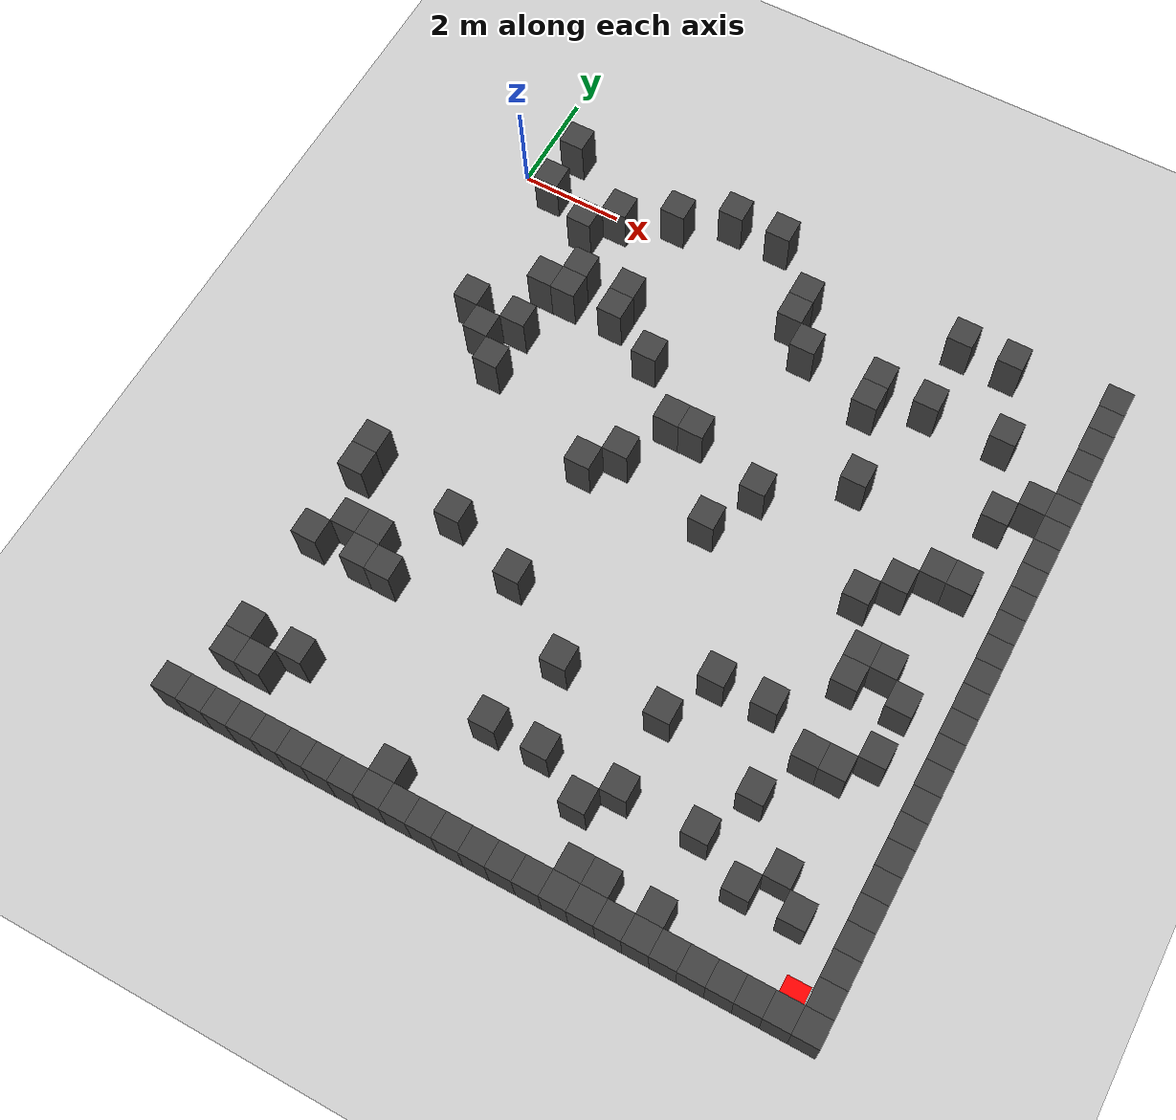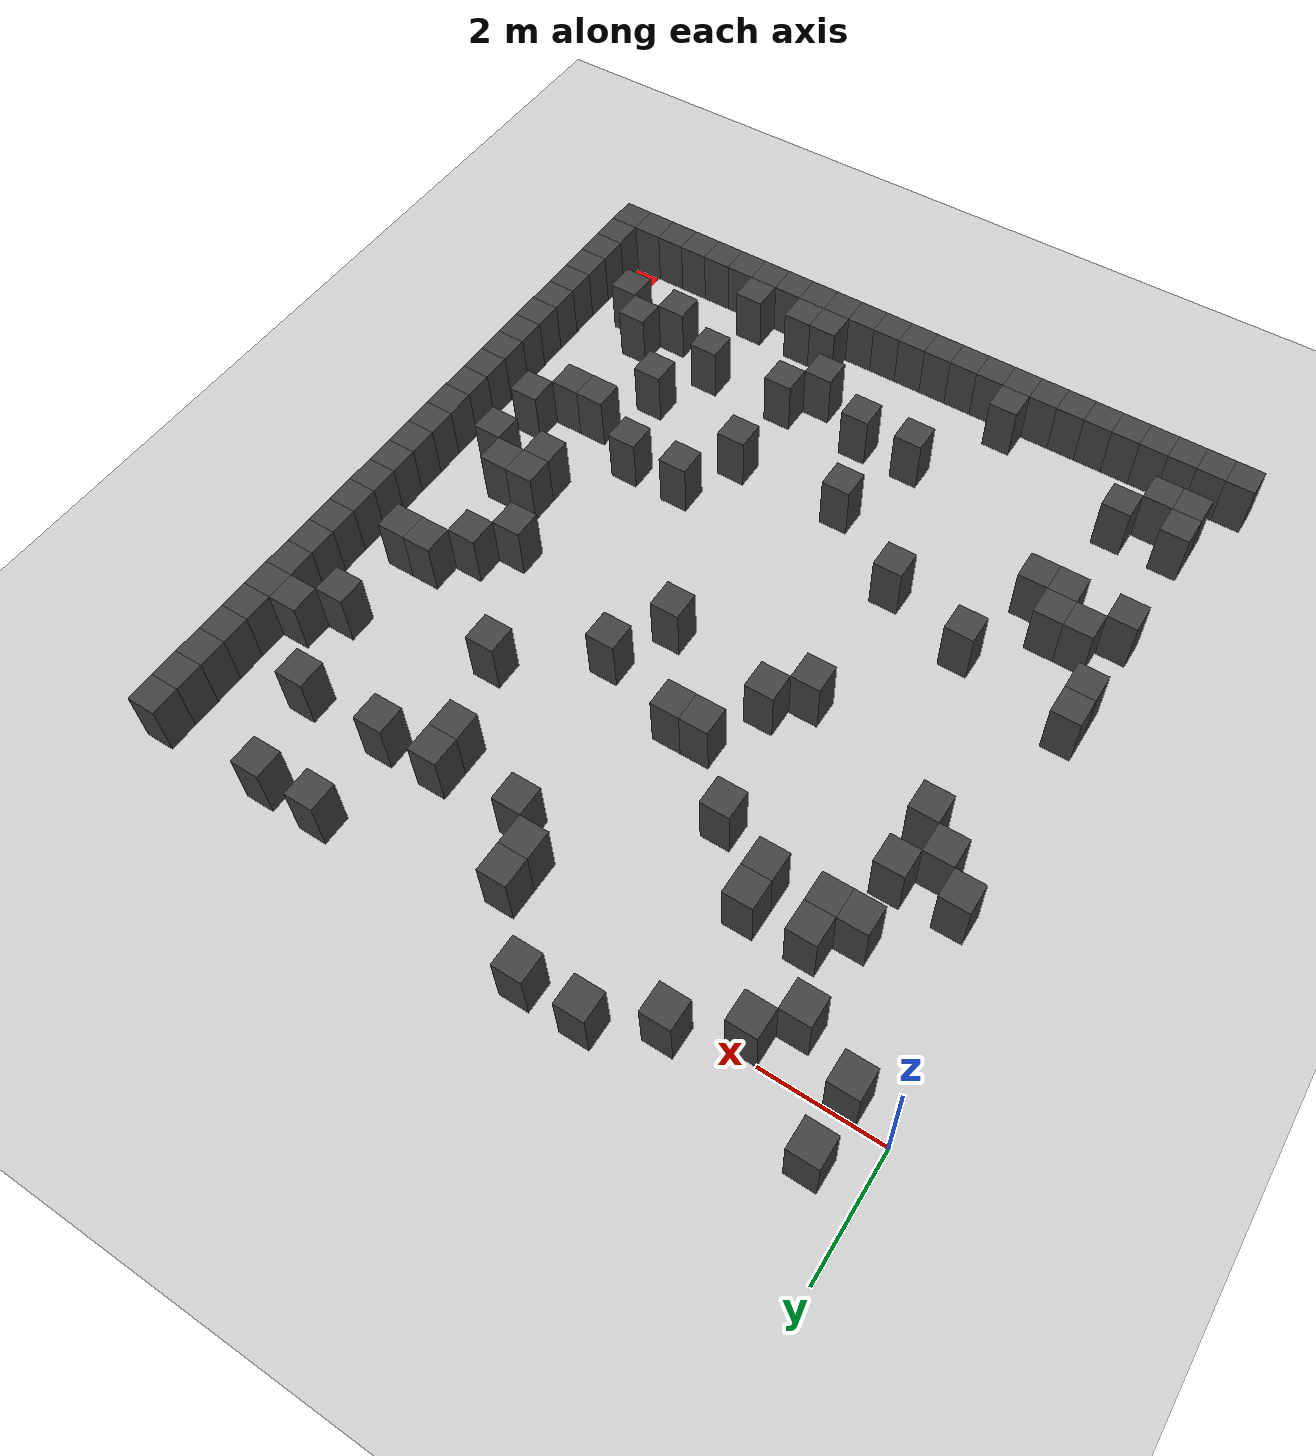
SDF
<sdf version="1.7">
 <world name="map_2627">
  <model name="ground_plane">
   <static>true</static>
   <link name="link">
    <collision name="collision">
     <geometry><plane><normal>0 0 1</normal><size>200 200</size></plane></geometry>
    </collision>
    <visual name="visual">
     <geometry><plane><normal>0 0 1</normal><size>200 200</size></plane></geometry>
     <material><ambient>0.8 0.8 0.8 1</ambient><diffuse>0.8 0.8 0.8 1</diffuse></material>
    </visual>
   </link>
  </model>
  <model name="maze_environment">
   <static>true</static>
   <link name="wall_251">
    <pose>0.750 0.750 0.500 0 0 0</pose>
    <collision name="col"><geometry><box><size>0.5 0.5 1.0</size></box></geometry></collision>
    <visual name="vis">
     <geometry><box><size>0.5 0.5 1.0</size></box></geometry>
     <material><ambient>0.15 0.15 0.15 1</ambient><diffuse>0.25 0.25 0.25 1</diffuse></material>
    </visual>
   </link>
   <link name="wall_252">
    <pose>4.250 0.750 0.500 0 0 0</pose>
    <collision name="col"><geometry><box><size>0.5 0.5 1.0</size></box></geometry></collision>
    <visual name="vis">
     <geometry><box><size>0.5 0.5 1.0</size></box></geometry>
     <material><ambient>0.15 0.15 0.15 1</ambient><diffuse>0.25 0.25 0.25 1</diffuse></material>
    </visual>
   </link>
   <link name="wall_253">
    <pose>5.250 0.750 0.500 0 0 0</pose>
    <collision name="col"><geometry><box><size>0.5 0.5 1.0</size></box></geometry></collision>
    <visual name="vis">
     <geometry><box><size>0.5 0.5 1.0</size></box></geometry>
     <material><ambient>0.15 0.15 0.15 1</ambient><diffuse>0.25 0.25 0.25 1</diffuse></material>
    </visual>
   </link>
   <link name="wall_262">
    <pose>3.250 0.250 0.500 0 0 0</pose>
    <collision name="col"><geometry><box><size>0.5 0.5 1.0</size></box></geometry></collision>
    <visual name="vis">
     <geometry><box><size>0.5 0.5 1.0</size></box></geometry>
     <material><ambient>0.15 0.15 0.15 1</ambient><diffuse>0.25 0.25 0.25 1</diffuse></material>
    </visual>
   </link>
   <link name="wall_263">
    <pose>9.250 0.250 0.500 0 0 0</pose>
    <collision name="col"><geometry><box><size>0.5 0.5 1.0</size></box></geometry></collision>
    <visual name="vis">
     <geometry><box><size>0.5 0.5 1.0</size></box></geometry>
     <material><ambient>0.15 0.15 0.15 1</ambient><diffuse>0.25 0.25 0.25 1</diffuse></material>
    </visual>
   </link>
   <link name="wall_264">
    <pose>10.250 0.250 0.500 0 0 0</pose>
    <collision name="col"><geometry><box><size>0.5 0.5 1.0</size></box></geometry></collision>
    <visual name="vis">
     <geometry><box><size>0.5 0.5 1.0</size></box></geometry>
     <material><ambient>0.15 0.15 0.15 1</ambient><diffuse>0.25 0.25 0.25 1</diffuse></material>
    </visual>
   </link>
   <link name="wall_265">
    <pose>12.250 0.250 0.500 0 0 0</pose>
    <collision name="col"><geometry><box><size>0.5 0.5 1.0</size></box></geometry></collision>
    <visual name="vis">
     <geometry><box><size>0.5 0.5 1.0</size></box></geometry>
     <material><ambient>0.15 0.15 0.15 1</ambient><diffuse>0.25 0.25 0.25 1</diffuse></material>
    </visual>
   </link>
   <link name="wall_270">
    <pose>0.750 -0.250 0.500 0 0 0</pose>
    <collision name="col"><geometry><box><size>0.5 0.5 1.0</size></box></geometry></collision>
    <visual name="vis">
     <geometry><box><size>0.5 0.5 1.0</size></box></geometry>
     <material><ambient>0.15 0.15 0.15 1</ambient><diffuse>0.25 0.25 0.25 1</diffuse></material>
    </visual>
   </link>
   <link name="wall_271">
    <pose>2.250 -0.250 0.500 0 0 0</pose>
    <collision name="col"><geometry><box><size>0.5 0.5 1.0</size></box></geometry></collision>
    <visual name="vis">
     <geometry><box><size>0.5 0.5 1.0</size></box></geometry>
     <material><ambient>0.15 0.15 0.15 1</ambient><diffuse>0.25 0.25 0.25 1</diffuse></material>
    </visual>
   </link>
   <link name="wall_272">
    <pose>6.250 -0.250 0.500 0 0 0</pose>
    <collision name="col"><geometry><box><size>0.5 0.5 1.0</size></box></geometry></collision>
    <visual name="vis">
     <geometry><box><size>0.5 0.5 1.0</size></box></geometry>
     <material><ambient>0.15 0.15 0.15 1</ambient><diffuse>0.25 0.25 0.25 1</diffuse></material>
    </visual>
   </link>
   <link name="wall_273">
    <pose>12.250 -0.250 0.500 0 0 0</pose>
    <collision name="col"><geometry><box><size>0.5 0.5 1.0</size></box></geometry></collision>
    <visual name="vis">
     <geometry><box><size>0.5 0.5 1.0</size></box></geometry>
     <material><ambient>0.15 0.15 0.15 1</ambient><diffuse>0.25 0.25 0.25 1</diffuse></material>
    </visual>
   </link>
   <link name="wall_276">
    <pose>1.750 -0.750 0.500 0 0 0</pose>
    <collision name="col"><geometry><box><size>0.5 0.5 1.0</size></box></geometry></collision>
    <visual name="vis">
     <geometry><box><size>0.5 0.5 1.0</size></box></geometry>
     <material><ambient>0.15 0.15 0.15 1</ambient><diffuse>0.25 0.25 0.25 1</diffuse></material>
    </visual>
   </link>
   <link name="wall_277">
    <pose>6.250 -0.750 0.500 0 0 0</pose>
    <collision name="col"><geometry><box><size>0.5 0.5 1.0</size></box></geometry></collision>
    <visual name="vis">
     <geometry><box><size>0.5 0.5 1.0</size></box></geometry>
     <material><ambient>0.15 0.15 0.15 1</ambient><diffuse>0.25 0.25 0.25 1</diffuse></material>
    </visual>
   </link>
   <link name="wall_278">
    <pose>12.250 -0.750 0.500 0 0 0</pose>
    <collision name="col"><geometry><box><size>0.5 0.5 1.0</size></box></geometry></collision>
    <visual name="vis">
     <geometry><box><size>0.5 0.5 1.0</size></box></geometry>
     <material><ambient>0.15 0.15 0.15 1</ambient><diffuse>0.25 0.25 0.25 1</diffuse></material>
    </visual>
   </link>
   <link name="wall_282">
    <pose>6.750 -1.250 0.500 0 0 0</pose>
    <collision name="col"><geometry><box><size>0.5 0.5 1.0</size></box></geometry></collision>
    <visual name="vis">
     <geometry><box><size>0.5 0.5 1.0</size></box></geometry>
     <material><ambient>0.15 0.15 0.15 1</ambient><diffuse>0.25 0.25 0.25 1</diffuse></material>
    </visual>
   </link>
   <link name="wall_283">
    <pose>8.250 -1.250 0.500 0 0 0</pose>
    <collision name="col"><geometry><box><size>0.5 0.5 1.0</size></box></geometry></collision>
    <visual name="vis">
     <geometry><box><size>0.5 0.5 1.0</size></box></geometry>
     <material><ambient>0.15 0.15 0.15 1</ambient><diffuse>0.25 0.25 0.25 1</diffuse></material>
    </visual>
   </link>
   <link name="wall_284">
    <pose>9.250 -1.250 0.500 0 0 0</pose>
    <collision name="col"><geometry><box><size>0.5 0.5 1.0</size></box></geometry></collision>
    <visual name="vis">
     <geometry><box><size>0.5 0.5 1.0</size></box></geometry>
     <material><ambient>0.15 0.15 0.15 1</ambient><diffuse>0.25 0.25 0.25 1</diffuse></material>
    </visual>
   </link>
   <link name="wall_285">
    <pose>10.750 -1.250 0.500 0 0 0</pose>
    <collision name="col"><geometry><box><size>0.5 0.5 1.0</size></box></geometry></collision>
    <visual name="vis">
     <geometry><box><size>0.5 0.5 1.0</size></box></geometry>
     <material><ambient>0.15 0.15 0.15 1</ambient><diffuse>0.25 0.25 0.25 1</diffuse></material>
    </visual>
   </link>
   <link name="wall_286">
    <pose>12.250 -1.250 0.500 0 0 0</pose>
    <collision name="col"><geometry><box><size>0.5 0.5 1.0</size></box></geometry></collision>
    <visual name="vis">
     <geometry><box><size>0.5 0.5 1.0</size></box></geometry>
     <material><ambient>0.15 0.15 0.15 1</ambient><diffuse>0.25 0.25 0.25 1</diffuse></material>
    </visual>
   </link>
   <link name="wall_290">
    <pose>2.250 -1.750 0.500 0 0 0</pose>
    <collision name="col"><geometry><box><size>0.5 0.5 1.0</size></box></geometry></collision>
    <visual name="vis">
     <geometry><box><size>0.5 0.5 1.0</size></box></geometry>
     <material><ambient>0.15 0.15 0.15 1</ambient><diffuse>0.25 0.25 0.25 1</diffuse></material>
    </visual>
   </link>
   <link name="wall_291">
    <pose>3.250 -1.750 0.500 0 0 0</pose>
    <collision name="col"><geometry><box><size>0.5 0.5 1.0</size></box></geometry></collision>
    <visual name="vis">
     <geometry><box><size>0.5 0.5 1.0</size></box></geometry>
     <material><ambient>0.15 0.15 0.15 1</ambient><diffuse>0.25 0.25 0.25 1</diffuse></material>
    </visual>
   </link>
   <link name="wall_292">
    <pose>8.250 -1.750 0.500 0 0 0</pose>
    <collision name="col"><geometry><box><size>0.5 0.5 1.0</size></box></geometry></collision>
    <visual name="vis">
     <geometry><box><size>0.5 0.5 1.0</size></box></geometry>
     <material><ambient>0.15 0.15 0.15 1</ambient><diffuse>0.25 0.25 0.25 1</diffuse></material>
    </visual>
   </link>
   <link name="wall_293">
    <pose>12.250 -1.750 0.500 0 0 0</pose>
    <collision name="col"><geometry><box><size>0.5 0.5 1.0</size></box></geometry></collision>
    <visual name="vis">
     <geometry><box><size>0.5 0.5 1.0</size></box></geometry>
     <material><ambient>0.15 0.15 0.15 1</ambient><diffuse>0.25 0.25 0.25 1</diffuse></material>
    </visual>
   </link>
   <link name="wall_296">
    <pose>1.750 -2.250 0.500 0 0 0</pose>
    <collision name="col"><geometry><box><size>0.5 0.5 1.0</size></box></geometry></collision>
    <visual name="vis">
     <geometry><box><size>0.5 0.5 1.0</size></box></geometry>
     <material><ambient>0.15 0.15 0.15 1</ambient><diffuse>0.25 0.25 0.25 1</diffuse></material>
    </visual>
   </link>
   <link name="wall_297">
    <pose>2.250 -2.250 0.500 0 0 0</pose>
    <collision name="col"><geometry><box><size>0.5 0.5 1.0</size></box></geometry></collision>
    <visual name="vis">
     <geometry><box><size>0.5 0.5 1.0</size></box></geometry>
     <material><ambient>0.15 0.15 0.15 1</ambient><diffuse>0.25 0.25 0.25 1</diffuse></material>
    </visual>
   </link>
   <link name="wall_298">
    <pose>3.250 -2.250 0.500 0 0 0</pose>
    <collision name="col"><geometry><box><size>0.5 0.5 1.0</size></box></geometry></collision>
    <visual name="vis">
     <geometry><box><size>0.5 0.5 1.0</size></box></geometry>
     <material><ambient>0.15 0.15 0.15 1</ambient><diffuse>0.25 0.25 0.25 1</diffuse></material>
    </visual>
   </link>
   <link name="wall_299">
    <pose>11.750 -2.250 0.500 0 0 0</pose>
    <collision name="col"><geometry><box><size>0.5 0.5 1.0</size></box></geometry></collision>
    <visual name="vis">
     <geometry><box><size>0.5 0.5 1.0</size></box></geometry>
     <material><ambient>0.15 0.15 0.15 1</ambient><diffuse>0.25 0.25 0.25 1</diffuse></material>
    </visual>
   </link>
   <link name="wall_300">
    <pose>12.250 -2.250 0.500 0 0 0</pose>
    <collision name="col"><geometry><box><size>0.5 0.5 1.0</size></box></geometry></collision>
    <visual name="vis">
     <geometry><box><size>0.5 0.5 1.0</size></box></geometry>
     <material><ambient>0.15 0.15 0.15 1</ambient><diffuse>0.25 0.25 0.25 1</diffuse></material>
    </visual>
   </link>
   <link name="wall_304">
    <pose>4.250 -2.750 0.500 0 0 0</pose>
    <collision name="col"><geometry><box><size>0.5 0.5 1.0</size></box></geometry></collision>
    <visual name="vis">
     <geometry><box><size>0.5 0.5 1.0</size></box></geometry>
     <material><ambient>0.15 0.15 0.15 1</ambient><diffuse>0.25 0.25 0.25 1</diffuse></material>
    </visual>
   </link>
   <link name="wall_305">
    <pose>11.250 -2.750 0.500 0 0 0</pose>
    <collision name="col"><geometry><box><size>0.5 0.5 1.0</size></box></geometry></collision>
    <visual name="vis">
     <geometry><box><size>0.5 0.5 1.0</size></box></geometry>
     <material><ambient>0.15 0.15 0.15 1</ambient><diffuse>0.25 0.25 0.25 1</diffuse></material>
    </visual>
   </link>
   <link name="wall_306">
    <pose>12.250 -2.750 0.500 0 0 0</pose>
    <collision name="col"><geometry><box><size>0.5 0.5 1.0</size></box></geometry></collision>
    <visual name="vis">
     <geometry><box><size>0.5 0.5 1.0</size></box></geometry>
     <material><ambient>0.15 0.15 0.15 1</ambient><diffuse>0.25 0.25 0.25 1</diffuse></material>
    </visual>
   </link>
   <link name="wall_310">
    <pose>0.750 -3.250 0.500 0 0 0</pose>
    <collision name="col"><geometry><box><size>0.5 0.5 1.0</size></box></geometry></collision>
    <visual name="vis">
     <geometry><box><size>0.5 0.5 1.0</size></box></geometry>
     <material><ambient>0.15 0.15 0.15 1</ambient><diffuse>0.25 0.25 0.25 1</diffuse></material>
    </visual>
   </link>
   <link name="wall_311">
    <pose>1.750 -3.250 0.500 0 0 0</pose>
    <collision name="col"><geometry><box><size>0.5 0.5 1.0</size></box></geometry></collision>
    <visual name="vis">
     <geometry><box><size>0.5 0.5 1.0</size></box></geometry>
     <material><ambient>0.15 0.15 0.15 1</ambient><diffuse>0.25 0.25 0.25 1</diffuse></material>
    </visual>
   </link>
   <link name="wall_312">
    <pose>8.750 -3.250 0.500 0 0 0</pose>
    <collision name="col"><geometry><box><size>0.5 0.5 1.0</size></box></geometry></collision>
    <visual name="vis">
     <geometry><box><size>0.5 0.5 1.0</size></box></geometry>
     <material><ambient>0.15 0.15 0.15 1</ambient><diffuse>0.25 0.25 0.25 1</diffuse></material>
    </visual>
   </link>
   <link name="wall_313">
    <pose>12.250 -3.250 0.500 0 0 0</pose>
    <collision name="col"><geometry><box><size>0.5 0.5 1.0</size></box></geometry></collision>
    <visual name="vis">
     <geometry><box><size>0.5 0.5 1.0</size></box></geometry>
     <material><ambient>0.15 0.15 0.15 1</ambient><diffuse>0.25 0.25 0.25 1</diffuse></material>
    </visual>
   </link>
   <link name="wall_316">
    <pose>1.250 -3.750 0.500 0 0 0</pose>
    <collision name="col"><geometry><box><size>0.5 0.5 1.0</size></box></geometry></collision>
    <visual name="vis">
     <geometry><box><size>0.5 0.5 1.0</size></box></geometry>
     <material><ambient>0.15 0.15 0.15 1</ambient><diffuse>0.25 0.25 0.25 1</diffuse></material>
    </visual>
   </link>
   <link name="wall_317">
    <pose>5.250 -3.750 0.500 0 0 0</pose>
    <collision name="col"><geometry><box><size>0.5 0.5 1.0</size></box></geometry></collision>
    <visual name="vis">
     <geometry><box><size>0.5 0.5 1.0</size></box></geometry>
     <material><ambient>0.15 0.15 0.15 1</ambient><diffuse>0.25 0.25 0.25 1</diffuse></material>
    </visual>
   </link>
   <link name="wall_318">
    <pose>5.750 -3.750 0.500 0 0 0</pose>
    <collision name="col"><geometry><box><size>0.5 0.5 1.0</size></box></geometry></collision>
    <visual name="vis">
     <geometry><box><size>0.5 0.5 1.0</size></box></geometry>
     <material><ambient>0.15 0.15 0.15 1</ambient><diffuse>0.25 0.25 0.25 1</diffuse></material>
    </visual>
   </link>
   <link name="wall_319">
    <pose>12.250 -3.750 0.500 0 0 0</pose>
    <collision name="col"><geometry><box><size>0.5 0.5 1.0</size></box></geometry></collision>
    <visual name="vis">
     <geometry><box><size>0.5 0.5 1.0</size></box></geometry>
     <material><ambient>0.15 0.15 0.15 1</ambient><diffuse>0.25 0.25 0.25 1</diffuse></material>
    </visual>
   </link>
   <link name="wall_325">
    <pose>1.750 -4.250 0.500 0 0 0</pose>
    <collision name="col"><geometry><box><size>0.5 0.5 1.0</size></box></geometry></collision>
    <visual name="vis">
     <geometry><box><size>0.5 0.5 1.0</size></box></geometry>
     <material><ambient>0.15 0.15 0.15 1</ambient><diffuse>0.25 0.25 0.25 1</diffuse></material>
    </visual>
   </link>
   <link name="wall_326">
    <pose>7.250 -4.250 0.500 0 0 0</pose>
    <collision name="col"><geometry><box><size>0.5 0.5 1.0</size></box></geometry></collision>
    <visual name="vis">
     <geometry><box><size>0.5 0.5 1.0</size></box></geometry>
     <material><ambient>0.15 0.15 0.15 1</ambient><diffuse>0.25 0.25 0.25 1</diffuse></material>
    </visual>
   </link>
   <link name="wall_327">
    <pose>10.750 -4.250 0.500 0 0 0</pose>
    <collision name="col"><geometry><box><size>0.5 0.5 1.0</size></box></geometry></collision>
    <visual name="vis">
     <geometry><box><size>0.5 0.5 1.0</size></box></geometry>
     <material><ambient>0.15 0.15 0.15 1</ambient><diffuse>0.25 0.25 0.25 1</diffuse></material>
    </visual>
   </link>
   <link name="wall_328">
    <pose>11.250 -4.250 0.500 0 0 0</pose>
    <collision name="col"><geometry><box><size>0.5 0.5 1.0</size></box></geometry></collision>
    <visual name="vis">
     <geometry><box><size>0.5 0.5 1.0</size></box></geometry>
     <material><ambient>0.15 0.15 0.15 1</ambient><diffuse>0.25 0.25 0.25 1</diffuse></material>
    </visual>
   </link>
   <link name="wall_329">
    <pose>12.250 -4.250 0.500 0 0 0</pose>
    <collision name="col"><geometry><box><size>0.5 0.5 1.0</size></box></geometry></collision>
    <visual name="vis">
     <geometry><box><size>0.5 0.5 1.0</size></box></geometry>
     <material><ambient>0.15 0.15 0.15 1</ambient><diffuse>0.25 0.25 0.25 1</diffuse></material>
    </visual>
   </link>
   <link name="wall_336">
    <pose>4.750 -4.750 0.500 0 0 0</pose>
    <collision name="col"><geometry><box><size>0.5 0.5 1.0</size></box></geometry></collision>
    <visual name="vis">
     <geometry><box><size>0.5 0.5 1.0</size></box></geometry>
     <material><ambient>0.15 0.15 0.15 1</ambient><diffuse>0.25 0.25 0.25 1</diffuse></material>
    </visual>
   </link>
   <link name="wall_337">
    <pose>10.250 -4.750 0.500 0 0 0</pose>
    <collision name="col"><geometry><box><size>0.5 0.5 1.0</size></box></geometry></collision>
    <visual name="vis">
     <geometry><box><size>0.5 0.5 1.0</size></box></geometry>
     <material><ambient>0.15 0.15 0.15 1</ambient><diffuse>0.25 0.25 0.25 1</diffuse></material>
    </visual>
   </link>
   <link name="wall_338">
    <pose>12.250 -4.750 0.500 0 0 0</pose>
    <collision name="col"><geometry><box><size>0.5 0.5 1.0</size></box></geometry></collision>
    <visual name="vis">
     <geometry><box><size>0.5 0.5 1.0</size></box></geometry>
     <material><ambient>0.15 0.15 0.15 1</ambient><diffuse>0.25 0.25 0.25 1</diffuse></material>
    </visual>
   </link>
   <link name="wall_344">
    <pose>4.250 -5.250 0.500 0 0 0</pose>
    <collision name="col"><geometry><box><size>0.5 0.5 1.0</size></box></geometry></collision>
    <visual name="vis">
     <geometry><box><size>0.5 0.5 1.0</size></box></geometry>
     <material><ambient>0.15 0.15 0.15 1</ambient><diffuse>0.25 0.25 0.25 1</diffuse></material>
    </visual>
   </link>
   <link name="wall_345">
    <pose>6.750 -5.250 0.500 0 0 0</pose>
    <collision name="col"><geometry><box><size>0.5 0.5 1.0</size></box></geometry></collision>
    <visual name="vis">
     <geometry><box><size>0.5 0.5 1.0</size></box></geometry>
     <material><ambient>0.15 0.15 0.15 1</ambient><diffuse>0.25 0.25 0.25 1</diffuse></material>
    </visual>
   </link>
   <link name="wall_346">
    <pose>9.750 -5.250 0.500 0 0 0</pose>
    <collision name="col"><geometry><box><size>0.5 0.5 1.0</size></box></geometry></collision>
    <visual name="vis">
     <geometry><box><size>0.5 0.5 1.0</size></box></geometry>
     <material><ambient>0.15 0.15 0.15 1</ambient><diffuse>0.25 0.25 0.25 1</diffuse></material>
    </visual>
   </link>
   <link name="wall_347">
    <pose>12.250 -5.250 0.500 0 0 0</pose>
    <collision name="col"><geometry><box><size>0.5 0.5 1.0</size></box></geometry></collision>
    <visual name="vis">
     <geometry><box><size>0.5 0.5 1.0</size></box></geometry>
     <material><ambient>0.15 0.15 0.15 1</ambient><diffuse>0.25 0.25 0.25 1</diffuse></material>
    </visual>
   </link>
   <link name="wall_354">
    <pose>12.250 -5.750 0.500 0 0 0</pose>
    <collision name="col"><geometry><box><size>0.5 0.5 1.0</size></box></geometry></collision>
    <visual name="vis">
     <geometry><box><size>0.5 0.5 1.0</size></box></geometry>
     <material><ambient>0.15 0.15 0.15 1</ambient><diffuse>0.25 0.25 0.25 1</diffuse></material>
    </visual>
   </link>
   <link name="wall_359">
    <pose>10.250 -6.250 0.500 0 0 0</pose>
    <collision name="col"><geometry><box><size>0.5 0.5 1.0</size></box></geometry></collision>
    <visual name="vis">
     <geometry><box><size>0.5 0.5 1.0</size></box></geometry>
     <material><ambient>0.15 0.15 0.15 1</ambient><diffuse>0.25 0.25 0.25 1</diffuse></material>
    </visual>
   </link>
   <link name="wall_360">
    <pose>10.750 -6.250 0.500 0 0 0</pose>
    <collision name="col"><geometry><box><size>0.5 0.5 1.0</size></box></geometry></collision>
    <visual name="vis">
     <geometry><box><size>0.5 0.5 1.0</size></box></geometry>
     <material><ambient>0.15 0.15 0.15 1</ambient><diffuse>0.25 0.25 0.25 1</diffuse></material>
    </visual>
   </link>
   <link name="wall_361">
    <pose>12.250 -6.250 0.500 0 0 0</pose>
    <collision name="col"><geometry><box><size>0.5 0.5 1.0</size></box></geometry></collision>
    <visual name="vis">
     <geometry><box><size>0.5 0.5 1.0</size></box></geometry>
     <material><ambient>0.15 0.15 0.15 1</ambient><diffuse>0.25 0.25 0.25 1</diffuse></material>
    </visual>
   </link>
   <link name="wall_366">
    <pose>0.750 -6.750 0.500 0 0 0</pose>
    <collision name="col"><geometry><box><size>0.5 0.5 1.0</size></box></geometry></collision>
    <visual name="vis">
     <geometry><box><size>0.5 0.5 1.0</size></box></geometry>
     <material><ambient>0.15 0.15 0.15 1</ambient><diffuse>0.25 0.25 0.25 1</diffuse></material>
    </visual>
   </link>
   <link name="wall_367">
    <pose>10.250 -6.750 0.500 0 0 0</pose>
    <collision name="col"><geometry><box><size>0.5 0.5 1.0</size></box></geometry></collision>
    <visual name="vis">
     <geometry><box><size>0.5 0.5 1.0</size></box></geometry>
     <material><ambient>0.15 0.15 0.15 1</ambient><diffuse>0.25 0.25 0.25 1</diffuse></material>
    </visual>
   </link>
   <link name="wall_368">
    <pose>11.250 -6.750 0.500 0 0 0</pose>
    <collision name="col"><geometry><box><size>0.5 0.5 1.0</size></box></geometry></collision>
    <visual name="vis">
     <geometry><box><size>0.5 0.5 1.0</size></box></geometry>
     <material><ambient>0.15 0.15 0.15 1</ambient><diffuse>0.25 0.25 0.25 1</diffuse></material>
    </visual>
   </link>
   <link name="wall_369">
    <pose>12.250 -6.750 0.500 0 0 0</pose>
    <collision name="col"><geometry><box><size>0.5 0.5 1.0</size></box></geometry></collision>
    <visual name="vis">
     <geometry><box><size>0.5 0.5 1.0</size></box></geometry>
     <material><ambient>0.15 0.15 0.15 1</ambient><diffuse>0.25 0.25 0.25 1</diffuse></material>
    </visual>
   </link>
   <link name="wall_379">
    <pose>0.750 -7.250 0.500 0 0 0</pose>
    <collision name="col"><geometry><box><size>0.5 0.5 1.0</size></box></geometry></collision>
    <visual name="vis">
     <geometry><box><size>0.5 0.5 1.0</size></box></geometry>
     <material><ambient>0.15 0.15 0.15 1</ambient><diffuse>0.25 0.25 0.25 1</diffuse></material>
    </visual>
   </link>
   <link name="wall_380">
    <pose>2.750 -7.250 0.500 0 0 0</pose>
    <collision name="col"><geometry><box><size>0.5 0.5 1.0</size></box></geometry></collision>
    <visual name="vis">
     <geometry><box><size>0.5 0.5 1.0</size></box></geometry>
     <material><ambient>0.15 0.15 0.15 1</ambient><diffuse>0.25 0.25 0.25 1</diffuse></material>
    </visual>
   </link>
   <link name="wall_381">
    <pose>12.250 -7.250 0.500 0 0 0</pose>
    <collision name="col"><geometry><box><size>0.5 0.5 1.0</size></box></geometry></collision>
    <visual name="vis">
     <geometry><box><size>0.5 0.5 1.0</size></box></geometry>
     <material><ambient>0.15 0.15 0.15 1</ambient><diffuse>0.25 0.25 0.25 1</diffuse></material>
    </visual>
   </link>
   <link name="wall_384">
    <pose>4.250 -7.750 0.500 0 0 0</pose>
    <collision name="col"><geometry><box><size>0.5 0.5 1.0</size></box></geometry></collision>
    <visual name="vis">
     <geometry><box><size>0.5 0.5 1.0</size></box></geometry>
     <material><ambient>0.15 0.15 0.15 1</ambient><diffuse>0.25 0.25 0.25 1</diffuse></material>
    </visual>
   </link>
   <link name="wall_385">
    <pose>8.250 -7.750 0.500 0 0 0</pose>
    <collision name="col"><geometry><box><size>0.5 0.5 1.0</size></box></geometry></collision>
    <visual name="vis">
     <geometry><box><size>0.5 0.5 1.0</size></box></geometry>
     <material><ambient>0.15 0.15 0.15 1</ambient><diffuse>0.25 0.25 0.25 1</diffuse></material>
    </visual>
   </link>
   <link name="wall_386">
    <pose>9.250 -7.750 0.500 0 0 0</pose>
    <collision name="col"><geometry><box><size>0.5 0.5 1.0</size></box></geometry></collision>
    <visual name="vis">
     <geometry><box><size>0.5 0.5 1.0</size></box></geometry>
     <material><ambient>0.15 0.15 0.15 1</ambient><diffuse>0.25 0.25 0.25 1</diffuse></material>
    </visual>
   </link>
   <link name="wall_387">
    <pose>11.250 -7.750 0.500 0 0 0</pose>
    <collision name="col"><geometry><box><size>0.5 0.5 1.0</size></box></geometry></collision>
    <visual name="vis">
     <geometry><box><size>0.5 0.5 1.0</size></box></geometry>
     <material><ambient>0.15 0.15 0.15 1</ambient><diffuse>0.25 0.25 0.25 1</diffuse></material>
    </visual>
   </link>
   <link name="wall_388">
    <pose>12.250 -7.750 0.500 0 0 0</pose>
    <collision name="col"><geometry><box><size>0.5 0.5 1.0</size></box></geometry></collision>
    <visual name="vis">
     <geometry><box><size>0.5 0.5 1.0</size></box></geometry>
     <material><ambient>0.15 0.15 0.15 1</ambient><diffuse>0.25 0.25 0.25 1</diffuse></material>
    </visual>
   </link>
   <link name="wall_392">
    <pose>1.250 -8.250 0.500 0 0 0</pose>
    <collision name="col"><geometry><box><size>0.5 0.5 1.0</size></box></geometry></collision>
    <visual name="vis">
     <geometry><box><size>0.5 0.5 1.0</size></box></geometry>
     <material><ambient>0.15 0.15 0.15 1</ambient><diffuse>0.25 0.25 0.25 1</diffuse></material>
    </visual>
   </link>
   <link name="wall_393">
    <pose>1.750 -8.250 0.500 0 0 0</pose>
    <collision name="col"><geometry><box><size>0.5 0.5 1.0</size></box></geometry></collision>
    <visual name="vis">
     <geometry><box><size>0.5 0.5 1.0</size></box></geometry>
     <material><ambient>0.15 0.15 0.15 1</ambient><diffuse>0.25 0.25 0.25 1</diffuse></material>
    </visual>
   </link>
   <link name="wall_394">
    <pose>10.250 -8.250 0.500 0 0 0</pose>
    <collision name="col"><geometry><box><size>0.5 0.5 1.0</size></box></geometry></collision>
    <visual name="vis">
     <geometry><box><size>0.5 0.5 1.0</size></box></geometry>
     <material><ambient>0.15 0.15 0.15 1</ambient><diffuse>0.25 0.25 0.25 1</diffuse></material>
    </visual>
   </link>
   <link name="wall_395">
    <pose>10.750 -8.250 0.500 0 0 0</pose>
    <collision name="col"><geometry><box><size>0.5 0.5 1.0</size></box></geometry></collision>
    <visual name="vis">
     <geometry><box><size>0.5 0.5 1.0</size></box></geometry>
     <material><ambient>0.15 0.15 0.15 1</ambient><diffuse>0.25 0.25 0.25 1</diffuse></material>
    </visual>
   </link>
   <link name="wall_396">
    <pose>12.250 -8.250 0.500 0 0 0</pose>
    <collision name="col"><geometry><box><size>0.5 0.5 1.0</size></box></geometry></collision>
    <visual name="vis">
     <geometry><box><size>0.5 0.5 1.0</size></box></geometry>
     <material><ambient>0.15 0.15 0.15 1</ambient><diffuse>0.25 0.25 0.25 1</diffuse></material>
    </visual>
   </link>
   <link name="wall_401">
    <pose>0.750 -8.750 0.500 0 0 0</pose>
    <collision name="col"><geometry><box><size>0.5 0.5 1.0</size></box></geometry></collision>
    <visual name="vis">
     <geometry><box><size>0.5 0.5 1.0</size></box></geometry>
     <material><ambient>0.15 0.15 0.15 1</ambient><diffuse>0.25 0.25 0.25 1</diffuse></material>
    </visual>
   </link>
   <link name="wall_402">
    <pose>1.750 -8.750 0.500 0 0 0</pose>
    <collision name="col"><geometry><box><size>0.5 0.5 1.0</size></box></geometry></collision>
    <visual name="vis">
     <geometry><box><size>0.5 0.5 1.0</size></box></geometry>
     <material><ambient>0.15 0.15 0.15 1</ambient><diffuse>0.25 0.25 0.25 1</diffuse></material>
    </visual>
   </link>
   <link name="wall_403">
    <pose>2.250 -8.750 0.500 0 0 0</pose>
    <collision name="col"><geometry><box><size>0.5 0.5 1.0</size></box></geometry></collision>
    <visual name="vis">
     <geometry><box><size>0.5 0.5 1.0</size></box></geometry>
     <material><ambient>0.15 0.15 0.15 1</ambient><diffuse>0.25 0.25 0.25 1</diffuse></material>
    </visual>
   </link>
   <link name="wall_404">
    <pose>5.750 -8.750 0.500 0 0 0</pose>
    <collision name="col"><geometry><box><size>0.5 0.5 1.0</size></box></geometry></collision>
    <visual name="vis">
     <geometry><box><size>0.5 0.5 1.0</size></box></geometry>
     <material><ambient>0.15 0.15 0.15 1</ambient><diffuse>0.25 0.25 0.25 1</diffuse></material>
    </visual>
   </link>
   <link name="wall_405">
    <pose>7.750 -8.750 0.500 0 0 0</pose>
    <collision name="col"><geometry><box><size>0.5 0.5 1.0</size></box></geometry></collision>
    <visual name="vis">
     <geometry><box><size>0.5 0.5 1.0</size></box></geometry>
     <material><ambient>0.15 0.15 0.15 1</ambient><diffuse>0.25 0.25 0.25 1</diffuse></material>
    </visual>
   </link>
   <link name="wall_406">
    <pose>12.250 -8.750 0.500 0 0 0</pose>
    <collision name="col"><geometry><box><size>0.5 0.5 1.0</size></box></geometry></collision>
    <visual name="vis">
     <geometry><box><size>0.5 0.5 1.0</size></box></geometry>
     <material><ambient>0.15 0.15 0.15 1</ambient><diffuse>0.25 0.25 0.25 1</diffuse></material>
    </visual>
   </link>
   <link name="wall_412">
    <pose>9.750 -9.250 0.500 0 0 0</pose>
    <collision name="col"><geometry><box><size>0.5 0.5 1.0</size></box></geometry></collision>
    <visual name="vis">
     <geometry><box><size>0.5 0.5 1.0</size></box></geometry>
     <material><ambient>0.15 0.15 0.15 1</ambient><diffuse>0.25 0.25 0.25 1</diffuse></material>
    </visual>
   </link>
   <link name="wall_413">
    <pose>12.250 -9.250 0.500 0 0 0</pose>
    <collision name="col"><geometry><box><size>0.5 0.5 1.0</size></box></geometry></collision>
    <visual name="vis">
     <geometry><box><size>0.5 0.5 1.0</size></box></geometry>
     <material><ambient>0.15 0.15 0.15 1</ambient><diffuse>0.25 0.25 0.25 1</diffuse></material>
    </visual>
   </link>
   <link name="wall_417">
    <pose>12.250 -9.750 0.500 0 0 0</pose>
    <collision name="col"><geometry><box><size>0.5 0.5 1.0</size></box></geometry></collision>
    <visual name="vis">
     <geometry><box><size>0.5 0.5 1.0</size></box></geometry>
     <material><ambient>0.15 0.15 0.15 1</ambient><diffuse>0.25 0.25 0.25 1</diffuse></material>
    </visual>
   </link>
   <link name="wall_422">
    <pose>5.250 -10.250 0.500 0 0 0</pose>
    <collision name="col"><geometry><box><size>0.5 0.5 1.0</size></box></geometry></collision>
    <visual name="vis">
     <geometry><box><size>0.5 0.5 1.0</size></box></geometry>
     <material><ambient>0.15 0.15 0.15 1</ambient><diffuse>0.25 0.25 0.25 1</diffuse></material>
    </visual>
   </link>
   <link name="wall_423">
    <pose>6.250 -10.250 0.500 0 0 0</pose>
    <collision name="col"><geometry><box><size>0.5 0.5 1.0</size></box></geometry></collision>
    <visual name="vis">
     <geometry><box><size>0.5 0.5 1.0</size></box></geometry>
     <material><ambient>0.15 0.15 0.15 1</ambient><diffuse>0.25 0.25 0.25 1</diffuse></material>
    </visual>
   </link>
   <link name="wall_424">
    <pose>7.750 -10.250 0.500 0 0 0</pose>
    <collision name="col"><geometry><box><size>0.5 0.5 1.0</size></box></geometry></collision>
    <visual name="vis">
     <geometry><box><size>0.5 0.5 1.0</size></box></geometry>
     <material><ambient>0.15 0.15 0.15 1</ambient><diffuse>0.25 0.25 0.25 1</diffuse></material>
    </visual>
   </link>
   <link name="wall_425">
    <pose>9.250 -10.250 0.500 0 0 0</pose>
    <collision name="col"><geometry><box><size>0.5 0.5 1.0</size></box></geometry></collision>
    <visual name="vis">
     <geometry><box><size>0.5 0.5 1.0</size></box></geometry>
     <material><ambient>0.15 0.15 0.15 1</ambient><diffuse>0.25 0.25 0.25 1</diffuse></material>
    </visual>
   </link>
   <link name="wall_426">
    <pose>10.750 -10.250 0.500 0 0 0</pose>
    <collision name="col"><geometry><box><size>0.5 0.5 1.0</size></box></geometry></collision>
    <visual name="vis">
     <geometry><box><size>0.5 0.5 1.0</size></box></geometry>
     <material><ambient>0.15 0.15 0.15 1</ambient><diffuse>0.25 0.25 0.25 1</diffuse></material>
    </visual>
   </link>
   <link name="wall_427">
    <pose>12.250 -10.250 0.500 0 0 0</pose>
    <collision name="col"><geometry><box><size>0.5 0.5 1.0</size></box></geometry></collision>
    <visual name="vis">
     <geometry><box><size>0.5 0.5 1.0</size></box></geometry>
     <material><ambient>0.15 0.15 0.15 1</ambient><diffuse>0.25 0.25 0.25 1</diffuse></material>
    </visual>
   </link>
   <link name="wall_434">
    <pose>0.750 -10.750 0.500 0 0 0</pose>
    <collision name="col"><geometry><box><size>0.5 0.5 1.0</size></box></geometry></collision>
    <visual name="vis">
     <geometry><box><size>0.5 0.5 1.0</size></box></geometry>
     <material><ambient>0.15 0.15 0.15 1</ambient><diffuse>0.25 0.25 0.25 1</diffuse></material>
    </visual>
   </link>
   <link name="wall_435">
    <pose>1.750 -10.750 0.500 0 0 0</pose>
    <collision name="col"><geometry><box><size>0.5 0.5 1.0</size></box></geometry></collision>
    <visual name="vis">
     <geometry><box><size>0.5 0.5 1.0</size></box></geometry>
     <material><ambient>0.15 0.15 0.15 1</ambient><diffuse>0.25 0.25 0.25 1</diffuse></material>
    </visual>
   </link>
   <link name="wall_436">
    <pose>7.250 -10.750 0.500 0 0 0</pose>
    <collision name="col"><geometry><box><size>0.5 0.5 1.0</size></box></geometry></collision>
    <visual name="vis">
     <geometry><box><size>0.5 0.5 1.0</size></box></geometry>
     <material><ambient>0.15 0.15 0.15 1</ambient><diffuse>0.25 0.25 0.25 1</diffuse></material>
    </visual>
   </link>
   <link name="wall_437">
    <pose>10.250 -10.750 0.500 0 0 0</pose>
    <collision name="col"><geometry><box><size>0.5 0.5 1.0</size></box></geometry></collision>
    <visual name="vis">
     <geometry><box><size>0.5 0.5 1.0</size></box></geometry>
     <material><ambient>0.15 0.15 0.15 1</ambient><diffuse>0.25 0.25 0.25 1</diffuse></material>
    </visual>
   </link>
   <link name="wall_438">
    <pose>11.250 -10.750 0.500 0 0 0</pose>
    <collision name="col"><geometry><box><size>0.5 0.5 1.0</size></box></geometry></collision>
    <visual name="vis">
     <geometry><box><size>0.5 0.5 1.0</size></box></geometry>
     <material><ambient>0.15 0.15 0.15 1</ambient><diffuse>0.25 0.25 0.25 1</diffuse></material>
    </visual>
   </link>
   <link name="wall_439">
    <pose>12.250 -10.750 0.500 0 0 0</pose>
    <collision name="col"><geometry><box><size>0.5 0.5 1.0</size></box></geometry></collision>
    <visual name="vis">
     <geometry><box><size>0.5 0.5 1.0</size></box></geometry>
     <material><ambient>0.15 0.15 0.15 1</ambient><diffuse>0.25 0.25 0.25 1</diffuse></material>
    </visual>
   </link>
   <link name="wall_442">
    <pose>0.750 -11.250 0.500 0 0 0</pose>
    <collision name="col"><geometry><box><size>0.5 0.5 1.0</size></box></geometry></collision>
    <visual name="vis">
     <geometry><box><size>0.5 0.5 1.0</size></box></geometry>
     <material><ambient>0.15 0.15 0.15 1</ambient><diffuse>0.25 0.25 0.25 1</diffuse></material>
    </visual>
   </link>
   <link name="wall_443">
    <pose>1.250 -11.250 0.500 0 0 0</pose>
    <collision name="col"><geometry><box><size>0.5 0.5 1.0</size></box></geometry></collision>
    <visual name="vis">
     <geometry><box><size>0.5 0.5 1.0</size></box></geometry>
     <material><ambient>0.15 0.15 0.15 1</ambient><diffuse>0.25 0.25 0.25 1</diffuse></material>
    </visual>
   </link>
   <link name="wall_444">
    <pose>12.250 -11.250 0.500 0 0 0</pose>
    <collision name="col"><geometry><box><size>0.5 0.5 1.0</size></box></geometry></collision>
    <visual name="vis">
     <geometry><box><size>0.5 0.5 1.0</size></box></geometry>
     <material><ambient>0.15 0.15 0.15 1</ambient><diffuse>0.25 0.25 0.25 1</diffuse></material>
    </visual>
   </link>
   <link name="wall_451">
    <pose>4.250 -11.750 0.500 0 0 0</pose>
    <collision name="col"><geometry><box><size>0.5 0.5 1.0</size></box></geometry></collision>
    <visual name="vis">
     <geometry><box><size>0.5 0.5 1.0</size></box></geometry>
     <material><ambient>0.15 0.15 0.15 1</ambient><diffuse>0.25 0.25 0.25 1</diffuse></material>
    </visual>
   </link>
   <link name="wall_452">
    <pose>7.750 -11.750 0.500 0 0 0</pose>
    <collision name="col"><geometry><box><size>0.5 0.5 1.0</size></box></geometry></collision>
    <visual name="vis">
     <geometry><box><size>0.5 0.5 1.0</size></box></geometry>
     <material><ambient>0.15 0.15 0.15 1</ambient><diffuse>0.25 0.25 0.25 1</diffuse></material>
    </visual>
   </link>
   <link name="wall_453">
    <pose>8.250 -11.750 0.500 0 0 0</pose>
    <collision name="col"><geometry><box><size>0.5 0.5 1.0</size></box></geometry></collision>
    <visual name="vis">
     <geometry><box><size>0.5 0.5 1.0</size></box></geometry>
     <material><ambient>0.15 0.15 0.15 1</ambient><diffuse>0.25 0.25 0.25 1</diffuse></material>
    </visual>
   </link>
   <link name="wall_454">
    <pose>9.250 -11.750 0.500 0 0 0</pose>
    <collision name="col"><geometry><box><size>0.5 0.5 1.0</size></box></geometry></collision>
    <visual name="vis">
     <geometry><box><size>0.5 0.5 1.0</size></box></geometry>
     <material><ambient>0.15 0.15 0.15 1</ambient><diffuse>0.25 0.25 0.25 1</diffuse></material>
    </visual>
   </link>
   <link name="wall_455">
    <pose>12.250 -11.750 0.500 0 0 0</pose>
    <collision name="col"><geometry><box><size>0.5 0.5 1.0</size></box></geometry></collision>
    <visual name="vis">
     <geometry><box><size>0.5 0.5 1.0</size></box></geometry>
     <material><ambient>0.15 0.15 0.15 1</ambient><diffuse>0.25 0.25 0.25 1</diffuse></material>
    </visual>
   </link>
   <link name="wall_481">
    <pose>0.250 -12.250 0.500 0 0 0</pose>
    <collision name="col"><geometry><box><size>0.5 0.5 1.0</size></box></geometry></collision>
    <visual name="vis">
     <geometry><box><size>0.5 0.5 1.0</size></box></geometry>
     <material><ambient>0.15 0.15 0.15 1</ambient><diffuse>0.25 0.25 0.25 1</diffuse></material>
    </visual>
   </link>
   <link name="wall_482">
    <pose>0.750 -12.250 0.500 0 0 0</pose>
    <collision name="col"><geometry><box><size>0.5 0.5 1.0</size></box></geometry></collision>
    <visual name="vis">
     <geometry><box><size>0.5 0.5 1.0</size></box></geometry>
     <material><ambient>0.15 0.15 0.15 1</ambient><diffuse>0.25 0.25 0.25 1</diffuse></material>
    </visual>
   </link>
   <link name="wall_483">
    <pose>1.250 -12.250 0.500 0 0 0</pose>
    <collision name="col"><geometry><box><size>0.5 0.5 1.0</size></box></geometry></collision>
    <visual name="vis">
     <geometry><box><size>0.5 0.5 1.0</size></box></geometry>
     <material><ambient>0.15 0.15 0.15 1</ambient><diffuse>0.25 0.25 0.25 1</diffuse></material>
    </visual>
   </link>
   <link name="wall_484">
    <pose>1.750 -12.250 0.500 0 0 0</pose>
    <collision name="col"><geometry><box><size>0.5 0.5 1.0</size></box></geometry></collision>
    <visual name="vis">
     <geometry><box><size>0.5 0.5 1.0</size></box></geometry>
     <material><ambient>0.15 0.15 0.15 1</ambient><diffuse>0.25 0.25 0.25 1</diffuse></material>
    </visual>
   </link>
   <link name="wall_485">
    <pose>2.250 -12.250 0.500 0 0 0</pose>
    <collision name="col"><geometry><box><size>0.5 0.5 1.0</size></box></geometry></collision>
    <visual name="vis">
     <geometry><box><size>0.5 0.5 1.0</size></box></geometry>
     <material><ambient>0.15 0.15 0.15 1</ambient><diffuse>0.25 0.25 0.25 1</diffuse></material>
    </visual>
   </link>
   <link name="wall_486">
    <pose>2.750 -12.250 0.500 0 0 0</pose>
    <collision name="col"><geometry><box><size>0.5 0.5 1.0</size></box></geometry></collision>
    <visual name="vis">
     <geometry><box><size>0.5 0.5 1.0</size></box></geometry>
     <material><ambient>0.15 0.15 0.15 1</ambient><diffuse>0.25 0.25 0.25 1</diffuse></material>
    </visual>
   </link>
   <link name="wall_487">
    <pose>3.250 -12.250 0.500 0 0 0</pose>
    <collision name="col"><geometry><box><size>0.5 0.5 1.0</size></box></geometry></collision>
    <visual name="vis">
     <geometry><box><size>0.5 0.5 1.0</size></box></geometry>
     <material><ambient>0.15 0.15 0.15 1</ambient><diffuse>0.25 0.25 0.25 1</diffuse></material>
    </visual>
   </link>
   <link name="wall_488">
    <pose>3.750 -12.250 0.500 0 0 0</pose>
    <collision name="col"><geometry><box><size>0.5 0.5 1.0</size></box></geometry></collision>
    <visual name="vis">
     <geometry><box><size>0.5 0.5 1.0</size></box></geometry>
     <material><ambient>0.15 0.15 0.15 1</ambient><diffuse>0.25 0.25 0.25 1</diffuse></material>
    </visual>
   </link>
   <link name="wall_489">
    <pose>4.250 -12.250 0.500 0 0 0</pose>
    <collision name="col"><geometry><box><size>0.5 0.5 1.0</size></box></geometry></collision>
    <visual name="vis">
     <geometry><box><size>0.5 0.5 1.0</size></box></geometry>
     <material><ambient>0.15 0.15 0.15 1</ambient><diffuse>0.25 0.25 0.25 1</diffuse></material>
    </visual>
   </link>
   <link name="wall_490">
    <pose>4.750 -12.250 0.500 0 0 0</pose>
    <collision name="col"><geometry><box><size>0.5 0.5 1.0</size></box></geometry></collision>
    <visual name="vis">
     <geometry><box><size>0.5 0.5 1.0</size></box></geometry>
     <material><ambient>0.15 0.15 0.15 1</ambient><diffuse>0.25 0.25 0.25 1</diffuse></material>
    </visual>
   </link>
   <link name="wall_491">
    <pose>5.250 -12.250 0.500 0 0 0</pose>
    <collision name="col"><geometry><box><size>0.5 0.5 1.0</size></box></geometry></collision>
    <visual name="vis">
     <geometry><box><size>0.5 0.5 1.0</size></box></geometry>
     <material><ambient>0.15 0.15 0.15 1</ambient><diffuse>0.25 0.25 0.25 1</diffuse></material>
    </visual>
   </link>
   <link name="wall_492">
    <pose>5.750 -12.250 0.500 0 0 0</pose>
    <collision name="col"><geometry><box><size>0.5 0.5 1.0</size></box></geometry></collision>
    <visual name="vis">
     <geometry><box><size>0.5 0.5 1.0</size></box></geometry>
     <material><ambient>0.15 0.15 0.15 1</ambient><diffuse>0.25 0.25 0.25 1</diffuse></material>
    </visual>
   </link>
   <link name="wall_493">
    <pose>6.250 -12.250 0.500 0 0 0</pose>
    <collision name="col"><geometry><box><size>0.5 0.5 1.0</size></box></geometry></collision>
    <visual name="vis">
     <geometry><box><size>0.5 0.5 1.0</size></box></geometry>
     <material><ambient>0.15 0.15 0.15 1</ambient><diffuse>0.25 0.25 0.25 1</diffuse></material>
    </visual>
   </link>
   <link name="wall_494">
    <pose>6.750 -12.250 0.500 0 0 0</pose>
    <collision name="col"><geometry><box><size>0.5 0.5 1.0</size></box></geometry></collision>
    <visual name="vis">
     <geometry><box><size>0.5 0.5 1.0</size></box></geometry>
     <material><ambient>0.15 0.15 0.15 1</ambient><diffuse>0.25 0.25 0.25 1</diffuse></material>
    </visual>
   </link>
   <link name="wall_495">
    <pose>7.250 -12.250 0.500 0 0 0</pose>
    <collision name="col"><geometry><box><size>0.5 0.5 1.0</size></box></geometry></collision>
    <visual name="vis">
     <geometry><box><size>0.5 0.5 1.0</size></box></geometry>
     <material><ambient>0.15 0.15 0.15 1</ambient><diffuse>0.25 0.25 0.25 1</diffuse></material>
    </visual>
   </link>
   <link name="wall_496">
    <pose>7.750 -12.250 0.500 0 0 0</pose>
    <collision name="col"><geometry><box><size>0.5 0.5 1.0</size></box></geometry></collision>
    <visual name="vis">
     <geometry><box><size>0.5 0.5 1.0</size></box></geometry>
     <material><ambient>0.15 0.15 0.15 1</ambient><diffuse>0.25 0.25 0.25 1</diffuse></material>
    </visual>
   </link>
   <link name="wall_497">
    <pose>8.250 -12.250 0.500 0 0 0</pose>
    <collision name="col"><geometry><box><size>0.5 0.5 1.0</size></box></geometry></collision>
    <visual name="vis">
     <geometry><box><size>0.5 0.5 1.0</size></box></geometry>
     <material><ambient>0.15 0.15 0.15 1</ambient><diffuse>0.25 0.25 0.25 1</diffuse></material>
    </visual>
   </link>
   <link name="wall_498">
    <pose>8.750 -12.250 0.500 0 0 0</pose>
    <collision name="col"><geometry><box><size>0.5 0.5 1.0</size></box></geometry></collision>
    <visual name="vis">
     <geometry><box><size>0.5 0.5 1.0</size></box></geometry>
     <material><ambient>0.15 0.15 0.15 1</ambient><diffuse>0.25 0.25 0.25 1</diffuse></material>
    </visual>
   </link>
   <link name="wall_499">
    <pose>9.250 -12.250 0.500 0 0 0</pose>
    <collision name="col"><geometry><box><size>0.5 0.5 1.0</size></box></geometry></collision>
    <visual name="vis">
     <geometry><box><size>0.5 0.5 1.0</size></box></geometry>
     <material><ambient>0.15 0.15 0.15 1</ambient><diffuse>0.25 0.25 0.25 1</diffuse></material>
    </visual>
   </link>
   <link name="wall_500">
    <pose>9.750 -12.250 0.500 0 0 0</pose>
    <collision name="col"><geometry><box><size>0.5 0.5 1.0</size></box></geometry></collision>
    <visual name="vis">
     <geometry><box><size>0.5 0.5 1.0</size></box></geometry>
     <material><ambient>0.15 0.15 0.15 1</ambient><diffuse>0.25 0.25 0.25 1</diffuse></material>
    </visual>
   </link>
   <link name="wall_501">
    <pose>10.250 -12.250 0.500 0 0 0</pose>
    <collision name="col"><geometry><box><size>0.5 0.5 1.0</size></box></geometry></collision>
    <visual name="vis">
     <geometry><box><size>0.5 0.5 1.0</size></box></geometry>
     <material><ambient>0.15 0.15 0.15 1</ambient><diffuse>0.25 0.25 0.25 1</diffuse></material>
    </visual>
   </link>
   <link name="wall_502">
    <pose>10.750 -12.250 0.500 0 0 0</pose>
    <collision name="col"><geometry><box><size>0.5 0.5 1.0</size></box></geometry></collision>
    <visual name="vis">
     <geometry><box><size>0.5 0.5 1.0</size></box></geometry>
     <material><ambient>0.15 0.15 0.15 1</ambient><diffuse>0.25 0.25 0.25 1</diffuse></material>
    </visual>
   </link>
   <link name="wall_503">
    <pose>11.250 -12.250 0.500 0 0 0</pose>
    <collision name="col"><geometry><box><size>0.5 0.5 1.0</size></box></geometry></collision>
    <visual name="vis">
     <geometry><box><size>0.5 0.5 1.0</size></box></geometry>
     <material><ambient>0.15 0.15 0.15 1</ambient><diffuse>0.25 0.25 0.25 1</diffuse></material>
    </visual>
   </link>
   <link name="wall_504">
    <pose>11.750 -12.250 0.500 0 0 0</pose>
    <collision name="col"><geometry><box><size>0.5 0.5 1.0</size></box></geometry></collision>
    <visual name="vis">
     <geometry><box><size>0.5 0.5 1.0</size></box></geometry>
     <material><ambient>0.15 0.15 0.15 1</ambient><diffuse>0.25 0.25 0.25 1</diffuse></material>
    </visual>
   </link>
   <link name="wall_505">
    <pose>12.250 -12.250 0.500 0 0 0</pose>
    <collision name="col"><geometry><box><size>0.5 0.5 1.0</size></box></geometry></collision>
    <visual name="vis">
     <geometry><box><size>0.5 0.5 1.0</size></box></geometry>
     <material><ambient>0.15 0.15 0.15 1</ambient><diffuse>0.25 0.25 0.25 1</diffuse></material>
    </visual>
   </link>
   <link name="goal_zone">
    <pose>11.750 -11.750 0.005 0 0 0</pose>
    <visual name="vis">
     <geometry><box><size>0.45 0.45 0.01</size></box></geometry>
     <material>
      <ambient>1.0 0.0 0.0 1</ambient>
      <diffuse>1.0 0.0 0.0 1</diffuse>
      <emissive>0.60 0.00 0.00 1</emissive>
     </material>
    </visual>
   </link>
  </model>
 </world>
</sdf>
